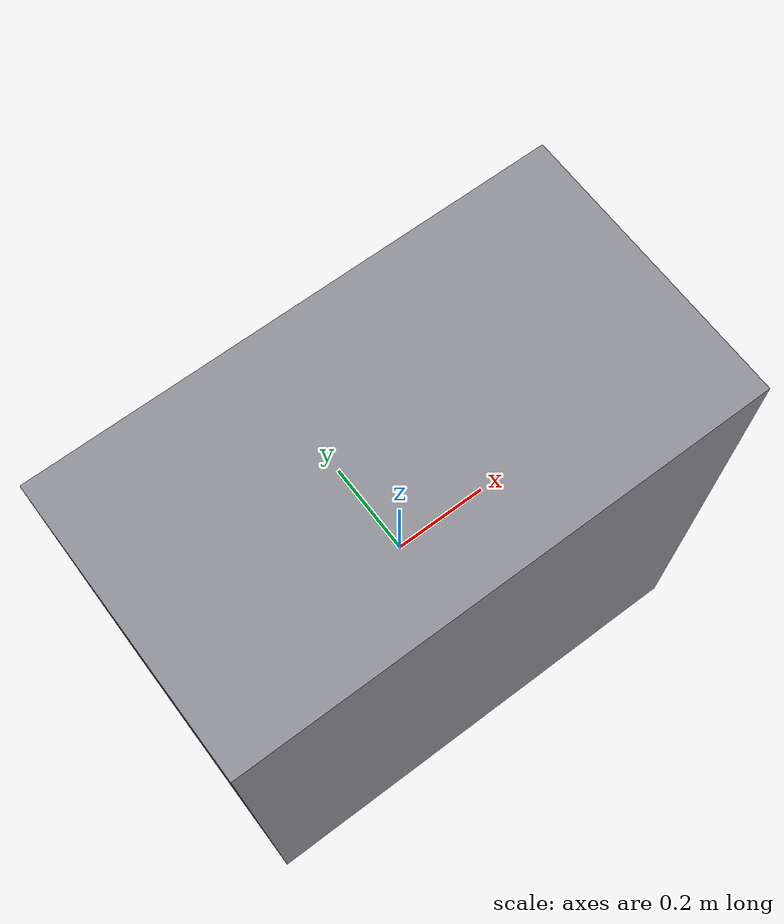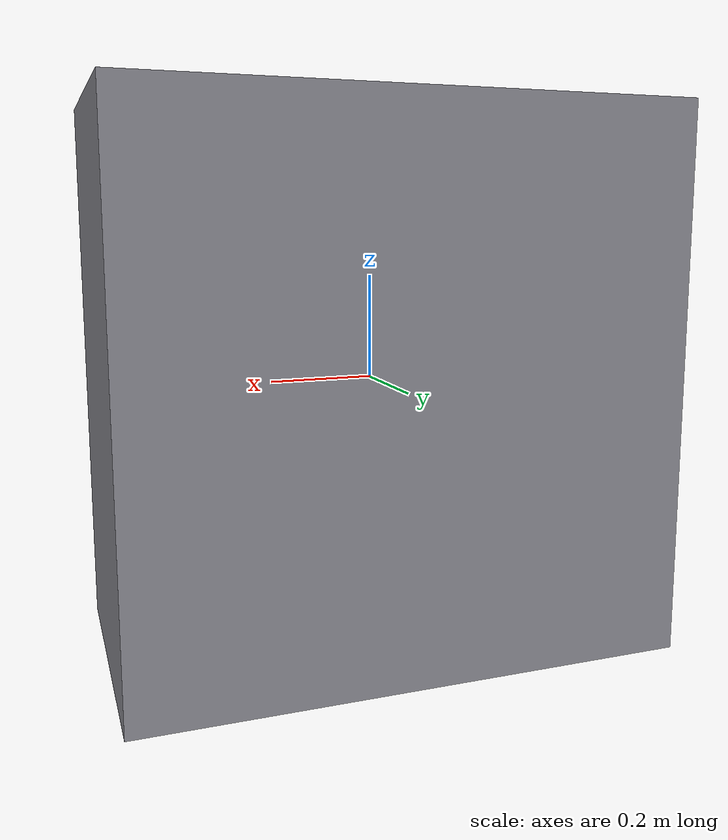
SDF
<?xml version="1.0"?>
<sdf version="1.6">
  <model name="ParkingTrolleyMax">
    <static>true</static>
    <link name="link">
      <collision name="col">
        <geometry>
          <box>
            <size>1.05 0.58 1.05</size>
          </box>
        </geometry>
      </collision>
      <visual name="vis">
        <geometry>
          <box>
            <size>1.05 0.58 1.05</size>
          </box>
        </geometry>
        <material>
          <ambient>0.55 0.55 0.58 1</ambient>
          <diffuse>0.55 0.55 0.58 1</diffuse>
        </material>
      </visual>
    </link>
  </model>
</sdf>
